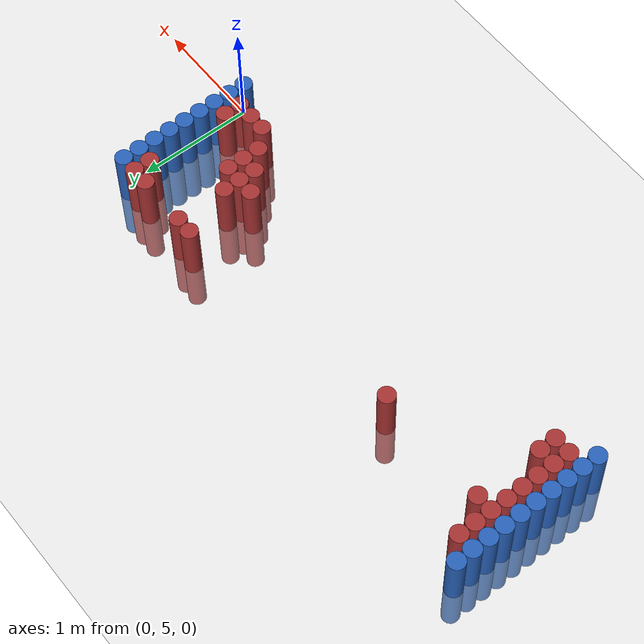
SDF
<sdf version="1.6">
 <world name="default">
  <model name="ground_plane">
   <static>1</static>
   <link name="link">
    <collision name="collision">
     <geometry><plane><normal>0 0 1</normal><size>100 100</size></plane></geometry>
     <surface><friction><ode><mu>100</mu><mu2>50</mu2></ode></friction></surface>
    </collision>
    <visual name="visual">
     <cast_shadows>0</cast_shadows>
     <geometry><plane><normal>0 0 1</normal><size>100 100</size></plane></geometry>
     <material>
      <script><uri>file://media/materials/scripts/gazebo.material</uri><name>Gazebo/Grey</name></script>
     </material>
    </visual>
   </link>
  </model>
  <model name="unit_cylinder_94">
   <static>1</static>
   <pose>-0.075000 5.025000 0.000000 0.000000 0.000000 0.000000</pose>
   <link name="link">
    <inertial>
     <mass>1</mass>
     <inertia><ixx>0.145833</ixx><ixy>0</ixy><ixz>0</ixz><iyy>0.145833</iyy><iyz>0</iyz><izz>0.125</izz></inertia>
    </inertial>
    <collision name="collision">
     <geometry><cylinder><radius>0.075000</radius><length>1</length></cylinder></geometry>
    </collision>
    <visual name="visual">
     <geometry><cylinder><radius>0.075000</radius><length>1</length></cylinder></geometry>
     <material>
      <ambient>0.152000 0.379000 0.720000 1</ambient>
      <diffuse>0.152000 0.379000 0.720000 1</diffuse>
     </material>
     <material>
      <script><name>Gazebo/Grey</name><uri>file://media/materials/scripts/gazebo.material</uri></script>
     </material>
    </visual>
   </link>
  </model>
  <model name="unit_cylinder_95">
   <static>1</static>
   <pose>-4.425000 5.025000 0.000000 0.000000 0.000000 0.000000</pose>
   <link name="link">
    <inertial>
     <mass>1</mass>
     <inertia><ixx>0.145833</ixx><ixy>0</ixy><ixz>0</ixz><iyy>0.145833</iyy><iyz>0</iyz><izz>0.125</izz></inertia>
    </inertial>
    <collision name="collision">
     <geometry><cylinder><radius>0.075000</radius><length>1</length></cylinder></geometry>
    </collision>
    <visual name="visual">
     <geometry><cylinder><radius>0.075000</radius><length>1</length></cylinder></geometry>
     <material>
      <ambient>0.152000 0.379000 0.720000 1</ambient>
      <diffuse>0.152000 0.379000 0.720000 1</diffuse>
     </material>
     <material>
      <script><name>Gazebo/Grey</name><uri>file://media/materials/scripts/gazebo.material</uri></script>
     </material>
    </visual>
   </link>
  </model>
  <model name="unit_cylinder_96">
   <static>1</static>
   <pose>-4.425000 5.175000 0.000000 0.000000 0.000000 0.000000</pose>
   <link name="link">
    <inertial>
     <mass>1</mass>
     <inertia><ixx>0.145833</ixx><ixy>0</ixy><ixz>0</ixz><iyy>0.145833</iyy><iyz>0</iyz><izz>0.125</izz></inertia>
    </inertial>
    <collision name="collision">
     <geometry><cylinder><radius>0.075000</radius><length>1</length></cylinder></geometry>
    </collision>
    <visual name="visual">
     <geometry><cylinder><radius>0.075000</radius><length>1</length></cylinder></geometry>
     <material>
      <ambient>0.152000 0.379000 0.720000 1</ambient>
      <diffuse>0.152000 0.379000 0.720000 1</diffuse>
     </material>
     <material>
      <script><name>Gazebo/Grey</name><uri>file://media/materials/scripts/gazebo.material</uri></script>
     </material>
    </visual>
   </link>
  </model>
  <model name="unit_cylinder_97">
   <static>1</static>
   <pose>-4.425000 5.325000 0.000000 0.000000 0.000000 0.000000</pose>
   <link name="link">
    <inertial>
     <mass>1</mass>
     <inertia><ixx>0.145833</ixx><ixy>0</ixy><ixz>0</ixz><iyy>0.145833</iyy><iyz>0</iyz><izz>0.125</izz></inertia>
    </inertial>
    <collision name="collision">
     <geometry><cylinder><radius>0.075000</radius><length>1</length></cylinder></geometry>
    </collision>
    <visual name="visual">
     <geometry><cylinder><radius>0.075000</radius><length>1</length></cylinder></geometry>
     <material>
      <ambient>0.152000 0.379000 0.720000 1</ambient>
      <diffuse>0.152000 0.379000 0.720000 1</diffuse>
     </material>
     <material>
      <script><name>Gazebo/Grey</name><uri>file://media/materials/scripts/gazebo.material</uri></script>
     </material>
    </visual>
   </link>
  </model>
  <model name="unit_cylinder_98">
   <static>1</static>
   <pose>-4.425000 5.475000 0.000000 0.000000 0.000000 0.000000</pose>
   <link name="link">
    <inertial>
     <mass>1</mass>
     <inertia><ixx>0.145833</ixx><ixy>0</ixy><ixz>0</ixz><iyy>0.145833</iyy><iyz>0</iyz><izz>0.125</izz></inertia>
    </inertial>
    <collision name="collision">
     <geometry><cylinder><radius>0.075000</radius><length>1</length></cylinder></geometry>
    </collision>
    <visual name="visual">
     <geometry><cylinder><radius>0.075000</radius><length>1</length></cylinder></geometry>
     <material>
      <ambient>0.152000 0.379000 0.720000 1</ambient>
      <diffuse>0.152000 0.379000 0.720000 1</diffuse>
     </material>
     <material>
      <script><name>Gazebo/Grey</name><uri>file://media/materials/scripts/gazebo.material</uri></script>
     </material>
    </visual>
   </link>
  </model>
  <model name="unit_cylinder_99">
   <static>1</static>
   <pose>-4.425000 5.625000 0.000000 0.000000 0.000000 0.000000</pose>
   <link name="link">
    <inertial>
     <mass>1</mass>
     <inertia><ixx>0.145833</ixx><ixy>0</ixy><ixz>0</ixz><iyy>0.145833</iyy><iyz>0</iyz><izz>0.125</izz></inertia>
    </inertial>
    <collision name="collision">
     <geometry><cylinder><radius>0.075000</radius><length>1</length></cylinder></geometry>
    </collision>
    <visual name="visual">
     <geometry><cylinder><radius>0.075000</radius><length>1</length></cylinder></geometry>
     <material>
      <ambient>0.152000 0.379000 0.720000 1</ambient>
      <diffuse>0.152000 0.379000 0.720000 1</diffuse>
     </material>
     <material>
      <script><name>Gazebo/Grey</name><uri>file://media/materials/scripts/gazebo.material</uri></script>
     </material>
    </visual>
   </link>
  </model>
  <model name="unit_cylinder_100">
   <static>1</static>
   <pose>-4.425000 5.775000 0.000000 0.000000 0.000000 0.000000</pose>
   <link name="link">
    <inertial>
     <mass>1</mass>
     <inertia><ixx>0.145833</ixx><ixy>0</ixy><ixz>0</ixz><iyy>0.145833</iyy><iyz>0</iyz><izz>0.125</izz></inertia>
    </inertial>
    <collision name="collision">
     <geometry><cylinder><radius>0.075000</radius><length>1</length></cylinder></geometry>
    </collision>
    <visual name="visual">
     <geometry><cylinder><radius>0.075000</radius><length>1</length></cylinder></geometry>
     <material>
      <ambient>0.152000 0.379000 0.720000 1</ambient>
      <diffuse>0.152000 0.379000 0.720000 1</diffuse>
     </material>
     <material>
      <script><name>Gazebo/Grey</name><uri>file://media/materials/scripts/gazebo.material</uri></script>
     </material>
    </visual>
   </link>
  </model>
  <model name="unit_cylinder_101">
   <static>1</static>
   <pose>-4.425000 5.925000 0.000000 0.000000 0.000000 0.000000</pose>
   <link name="link">
    <inertial>
     <mass>1</mass>
     <inertia><ixx>0.145833</ixx><ixy>0</ixy><ixz>0</ixz><iyy>0.145833</iyy><iyz>0</iyz><izz>0.125</izz></inertia>
    </inertial>
    <collision name="collision">
     <geometry><cylinder><radius>0.075000</radius><length>1</length></cylinder></geometry>
    </collision>
    <visual name="visual">
     <geometry><cylinder><radius>0.075000</radius><length>1</length></cylinder></geometry>
     <material>
      <ambient>0.152000 0.379000 0.720000 1</ambient>
      <diffuse>0.152000 0.379000 0.720000 1</diffuse>
     </material>
     <material>
      <script><name>Gazebo/Grey</name><uri>file://media/materials/scripts/gazebo.material</uri></script>
     </material>
    </visual>
   </link>
  </model>
  <model name="unit_cylinder_102">
   <static>1</static>
   <pose>-4.425000 6.075000 0.000000 0.000000 0.000000 0.000000</pose>
   <link name="link">
    <inertial>
     <mass>1</mass>
     <inertia><ixx>0.145833</ixx><ixy>0</ixy><ixz>0</ixz><iyy>0.145833</iyy><iyz>0</iyz><izz>0.125</izz></inertia>
    </inertial>
    <collision name="collision">
     <geometry><cylinder><radius>0.075000</radius><length>1</length></cylinder></geometry>
    </collision>
    <visual name="visual">
     <geometry><cylinder><radius>0.075000</radius><length>1</length></cylinder></geometry>
     <material>
      <ambient>0.152000 0.379000 0.720000 1</ambient>
      <diffuse>0.152000 0.379000 0.720000 1</diffuse>
     </material>
     <material>
      <script><name>Gazebo/Grey</name><uri>file://media/materials/scripts/gazebo.material</uri></script>
     </material>
    </visual>
   </link>
  </model>
  <model name="unit_cylinder_103">
   <static>1</static>
   <pose>-4.425000 6.225000 0.000000 0.000000 0.000000 0.000000</pose>
   <link name="link">
    <inertial>
     <mass>1</mass>
     <inertia><ixx>0.145833</ixx><ixy>0</ixy><ixz>0</ixz><iyy>0.145833</iyy><iyz>0</iyz><izz>0.125</izz></inertia>
    </inertial>
    <collision name="collision">
     <geometry><cylinder><radius>0.075000</radius><length>1</length></cylinder></geometry>
    </collision>
    <visual name="visual">
     <geometry><cylinder><radius>0.075000</radius><length>1</length></cylinder></geometry>
     <material>
      <ambient>0.152000 0.379000 0.720000 1</ambient>
      <diffuse>0.152000 0.379000 0.720000 1</diffuse>
     </material>
     <material>
      <script><name>Gazebo/Grey</name><uri>file://media/materials/scripts/gazebo.material</uri></script>
     </material>
    </visual>
   </link>
  </model>
  <model name="unit_cylinder_104">
   <static>1</static>
   <pose>-4.425000 6.375000 0.000000 0.000000 0.000000 0.000000</pose>
   <link name="link">
    <inertial>
     <mass>1</mass>
     <inertia><ixx>0.145833</ixx><ixy>0</ixy><ixz>0</ixz><iyy>0.145833</iyy><iyz>0</iyz><izz>0.125</izz></inertia>
    </inertial>
    <collision name="collision">
     <geometry><cylinder><radius>0.075000</radius><length>1</length></cylinder></geometry>
    </collision>
    <visual name="visual">
     <geometry><cylinder><radius>0.075000</radius><length>1</length></cylinder></geometry>
     <material>
      <ambient>0.152000 0.379000 0.720000 1</ambient>
      <diffuse>0.152000 0.379000 0.720000 1</diffuse>
     </material>
     <material>
      <script><name>Gazebo/Grey</name><uri>file://media/materials/scripts/gazebo.material</uri></script>
     </material>
    </visual>
   </link>
  </model>
  <model name="unit_cylinder_126">
   <static>1</static>
   <pose>-4.275000 5.175000 0.000000 0.000000 0.000000 0.000000</pose>
   <link name="link">
    <inertial>
     <mass>1</mass>
     <inertia><ixx>0.145833</ixx><ixy>0</ixy><ixz>0</ixz><iyy>0.145833</iyy><iyz>0</iyz><izz>0.125</izz></inertia>
    </inertial>
    <collision name="collision">
     <geometry><cylinder><radius>0.075000</radius><length>1</length></cylinder></geometry>
    </collision>
    <visual name="visual">
     <geometry><cylinder><radius>0.075000</radius><length>1</length></cylinder></geometry>
     <material>
      <ambient>0.648000 0.192000 0.192000 1</ambient>
      <diffuse>0.648000 0.192000 0.192000 1</diffuse>
     </material>
     <material>
      <script><name>Gazebo/Grey</name><uri>file://media/materials/scripts/gazebo.material</uri></script>
     </material>
    </visual>
   </link>
  </model>
  <model name="unit_cylinder_127">
   <static>1</static>
   <pose>-4.275000 5.325000 0.000000 0.000000 0.000000 0.000000</pose>
   <link name="link">
    <inertial>
     <mass>1</mass>
     <inertia><ixx>0.145833</ixx><ixy>0</ixy><ixz>0</ixz><iyy>0.145833</iyy><iyz>0</iyz><izz>0.125</izz></inertia>
    </inertial>
    <collision name="collision">
     <geometry><cylinder><radius>0.075000</radius><length>1</length></cylinder></geometry>
    </collision>
    <visual name="visual">
     <geometry><cylinder><radius>0.075000</radius><length>1</length></cylinder></geometry>
     <material>
      <ambient>0.648000 0.192000 0.192000 1</ambient>
      <diffuse>0.648000 0.192000 0.192000 1</diffuse>
     </material>
     <material>
      <script><name>Gazebo/Grey</name><uri>file://media/materials/scripts/gazebo.material</uri></script>
     </material>
    </visual>
   </link>
  </model>
  <model name="unit_cylinder_128">
   <static>1</static>
   <pose>-4.275000 5.475000 0.000000 0.000000 0.000000 0.000000</pose>
   <link name="link">
    <inertial>
     <mass>1</mass>
     <inertia><ixx>0.145833</ixx><ixy>0</ixy><ixz>0</ixz><iyy>0.145833</iyy><iyz>0</iyz><izz>0.125</izz></inertia>
    </inertial>
    <collision name="collision">
     <geometry><cylinder><radius>0.075000</radius><length>1</length></cylinder></geometry>
    </collision>
    <visual name="visual">
     <geometry><cylinder><radius>0.075000</radius><length>1</length></cylinder></geometry>
     <material>
      <ambient>0.648000 0.192000 0.192000 1</ambient>
      <diffuse>0.648000 0.192000 0.192000 1</diffuse>
     </material>
     <material>
      <script><name>Gazebo/Grey</name><uri>file://media/materials/scripts/gazebo.material</uri></script>
     </material>
    </visual>
   </link>
  </model>
  <model name="unit_cylinder_129">
   <static>1</static>
   <pose>-4.275000 5.625000 0.000000 0.000000 0.000000 0.000000</pose>
   <link name="link">
    <inertial>
     <mass>1</mass>
     <inertia><ixx>0.145833</ixx><ixy>0</ixy><ixz>0</ixz><iyy>0.145833</iyy><iyz>0</iyz><izz>0.125</izz></inertia>
    </inertial>
    <collision name="collision">
     <geometry><cylinder><radius>0.075000</radius><length>1</length></cylinder></geometry>
    </collision>
    <visual name="visual">
     <geometry><cylinder><radius>0.075000</radius><length>1</length></cylinder></geometry>
     <material>
      <ambient>0.648000 0.192000 0.192000 1</ambient>
      <diffuse>0.648000 0.192000 0.192000 1</diffuse>
     </material>
     <material>
      <script><name>Gazebo/Grey</name><uri>file://media/materials/scripts/gazebo.material</uri></script>
     </material>
    </visual>
   </link>
  </model>
  <model name="unit_cylinder_130">
   <static>1</static>
   <pose>-4.275000 5.775000 0.000000 0.000000 0.000000 0.000000</pose>
   <link name="link">
    <inertial>
     <mass>1</mass>
     <inertia><ixx>0.145833</ixx><ixy>0</ixy><ixz>0</ixz><iyy>0.145833</iyy><iyz>0</iyz><izz>0.125</izz></inertia>
    </inertial>
    <collision name="collision">
     <geometry><cylinder><radius>0.075000</radius><length>1</length></cylinder></geometry>
    </collision>
    <visual name="visual">
     <geometry><cylinder><radius>0.075000</radius><length>1</length></cylinder></geometry>
     <material>
      <ambient>0.648000 0.192000 0.192000 1</ambient>
      <diffuse>0.648000 0.192000 0.192000 1</diffuse>
     </material>
     <material>
      <script><name>Gazebo/Grey</name><uri>file://media/materials/scripts/gazebo.material</uri></script>
     </material>
    </visual>
   </link>
  </model>
  <model name="unit_cylinder_131">
   <static>1</static>
   <pose>-4.275000 5.925000 0.000000 0.000000 0.000000 0.000000</pose>
   <link name="link">
    <inertial>
     <mass>1</mass>
     <inertia><ixx>0.145833</ixx><ixy>0</ixy><ixz>0</ixz><iyy>0.145833</iyy><iyz>0</iyz><izz>0.125</izz></inertia>
    </inertial>
    <collision name="collision">
     <geometry><cylinder><radius>0.075000</radius><length>1</length></cylinder></geometry>
    </collision>
    <visual name="visual">
     <geometry><cylinder><radius>0.075000</radius><length>1</length></cylinder></geometry>
     <material>
      <ambient>0.648000 0.192000 0.192000 1</ambient>
      <diffuse>0.648000 0.192000 0.192000 1</diffuse>
     </material>
     <material>
      <script><name>Gazebo/Grey</name><uri>file://media/materials/scripts/gazebo.material</uri></script>
     </material>
    </visual>
   </link>
  </model>
  <model name="unit_cylinder_132">
   <static>1</static>
   <pose>-4.275000 6.075000 0.000000 0.000000 0.000000 0.000000</pose>
   <link name="link">
    <inertial>
     <mass>1</mass>
     <inertia><ixx>0.145833</ixx><ixy>0</ixy><ixz>0</ixz><iyy>0.145833</iyy><iyz>0</iyz><izz>0.125</izz></inertia>
    </inertial>
    <collision name="collision">
     <geometry><cylinder><radius>0.075000</radius><length>1</length></cylinder></geometry>
    </collision>
    <visual name="visual">
     <geometry><cylinder><radius>0.075000</radius><length>1</length></cylinder></geometry>
     <material>
      <ambient>0.648000 0.192000 0.192000 1</ambient>
      <diffuse>0.648000 0.192000 0.192000 1</diffuse>
     </material>
     <material>
      <script><name>Gazebo/Grey</name><uri>file://media/materials/scripts/gazebo.material</uri></script>
     </material>
    </visual>
   </link>
  </model>
  <model name="unit_cylinder_133">
   <static>1</static>
   <pose>-4.275000 6.225000 0.000000 0.000000 0.000000 0.000000</pose>
   <link name="link">
    <inertial>
     <mass>1</mass>
     <inertia><ixx>0.145833</ixx><ixy>0</ixy><ixz>0</ixz><iyy>0.145833</iyy><iyz>0</iyz><izz>0.125</izz></inertia>
    </inertial>
    <collision name="collision">
     <geometry><cylinder><radius>0.075000</radius><length>1</length></cylinder></geometry>
    </collision>
    <visual name="visual">
     <geometry><cylinder><radius>0.075000</radius><length>1</length></cylinder></geometry>
     <material>
      <ambient>0.648000 0.192000 0.192000 1</ambient>
      <diffuse>0.648000 0.192000 0.192000 1</diffuse>
     </material>
     <material>
      <script><name>Gazebo/Grey</name><uri>file://media/materials/scripts/gazebo.material</uri></script>
     </material>
    </visual>
   </link>
  </model>
  <model name="unit_cylinder_149">
   <static>1</static>
   <pose>-4.125000 5.175000 0.000000 0.000000 0.000000 0.000000</pose>
   <link name="link">
    <inertial>
     <mass>1</mass>
     <inertia><ixx>0.145833</ixx><ixy>0</ixy><ixz>0</ixz><iyy>0.145833</iyy><iyz>0</iyz><izz>0.125</izz></inertia>
    </inertial>
    <collision name="collision">
     <geometry><cylinder><radius>0.075000</radius><length>1</length></cylinder></geometry>
    </collision>
    <visual name="visual">
     <geometry><cylinder><radius>0.075000</radius><length>1</length></cylinder></geometry>
     <material>
      <ambient>0.648000 0.192000 0.192000 1</ambient>
      <diffuse>0.648000 0.192000 0.192000 1</diffuse>
     </material>
     <material>
      <script><name>Gazebo/Grey</name><uri>file://media/materials/scripts/gazebo.material</uri></script>
     </material>
    </visual>
   </link>
  </model>
  <model name="unit_cylinder_150">
   <static>1</static>
   <pose>-4.125000 5.325000 0.000000 0.000000 0.000000 0.000000</pose>
   <link name="link">
    <inertial>
     <mass>1</mass>
     <inertia><ixx>0.145833</ixx><ixy>0</ixy><ixz>0</ixz><iyy>0.145833</iyy><iyz>0</iyz><izz>0.125</izz></inertia>
    </inertial>
    <collision name="collision">
     <geometry><cylinder><radius>0.075000</radius><length>1</length></cylinder></geometry>
    </collision>
    <visual name="visual">
     <geometry><cylinder><radius>0.075000</radius><length>1</length></cylinder></geometry>
     <material>
      <ambient>0.648000 0.192000 0.192000 1</ambient>
      <diffuse>0.648000 0.192000 0.192000 1</diffuse>
     </material>
     <material>
      <script><name>Gazebo/Grey</name><uri>file://media/materials/scripts/gazebo.material</uri></script>
     </material>
    </visual>
   </link>
  </model>
  <model name="unit_cylinder_151">
   <static>1</static>
   <pose>-4.125000 5.925000 0.000000 0.000000 0.000000 0.000000</pose>
   <link name="link">
    <inertial>
     <mass>1</mass>
     <inertia><ixx>0.145833</ixx><ixy>0</ixy><ixz>0</ixz><iyy>0.145833</iyy><iyz>0</iyz><izz>0.125</izz></inertia>
    </inertial>
    <collision name="collision">
     <geometry><cylinder><radius>0.075000</radius><length>1</length></cylinder></geometry>
    </collision>
    <visual name="visual">
     <geometry><cylinder><radius>0.075000</radius><length>1</length></cylinder></geometry>
     <material>
      <ambient>0.648000 0.192000 0.192000 1</ambient>
      <diffuse>0.648000 0.192000 0.192000 1</diffuse>
     </material>
     <material>
      <script><name>Gazebo/Grey</name><uri>file://media/materials/scripts/gazebo.material</uri></script>
     </material>
    </visual>
   </link>
  </model>
  <model name="unit_cylinder_176">
   <static>1</static>
   <pose>-3.075000 5.925000 0.000000 0.000000 0.000000 0.000000</pose>
   <link name="link">
    <inertial>
     <mass>1</mass>
     <inertia><ixx>0.145833</ixx><ixy>0</ixy><ixz>0</ixz><iyy>0.145833</iyy><iyz>0</iyz><izz>0.125</izz></inertia>
    </inertial>
    <collision name="collision">
     <geometry><cylinder><radius>0.075000</radius><length>1</length></cylinder></geometry>
    </collision>
    <visual name="visual">
     <geometry><cylinder><radius>0.075000</radius><length>1</length></cylinder></geometry>
     <material>
      <ambient>0.648000 0.192000 0.192000 1</ambient>
      <diffuse>0.648000 0.192000 0.192000 1</diffuse>
     </material>
     <material>
      <script><name>Gazebo/Grey</name><uri>file://media/materials/scripts/gazebo.material</uri></script>
     </material>
    </visual>
   </link>
  </model>
  <model name="unit_cylinder_202">
   <static>1</static>
   <pose>-0.975000 5.625000 0.000000 0.000000 0.000000 0.000000</pose>
   <link name="link">
    <inertial>
     <mass>1</mass>
     <inertia><ixx>0.145833</ixx><ixy>0</ixy><ixz>0</ixz><iyy>0.145833</iyy><iyz>0</iyz><izz>0.125</izz></inertia>
    </inertial>
    <collision name="collision">
     <geometry><cylinder><radius>0.075000</radius><length>1</length></cylinder></geometry>
    </collision>
    <visual name="visual">
     <geometry><cylinder><radius>0.075000</radius><length>1</length></cylinder></geometry>
     <material>
      <ambient>0.648000 0.192000 0.192000 1</ambient>
      <diffuse>0.648000 0.192000 0.192000 1</diffuse>
     </material>
     <material>
      <script><name>Gazebo/Grey</name><uri>file://media/materials/scripts/gazebo.material</uri></script>
     </material>
    </visual>
   </link>
  </model>
  <model name="unit_cylinder_203">
   <static>1</static>
   <pose>-0.975000 6.225000 0.000000 0.000000 0.000000 0.000000</pose>
   <link name="link">
    <inertial>
     <mass>1</mass>
     <inertia><ixx>0.145833</ixx><ixy>0</ixy><ixz>0</ixz><iyy>0.145833</iyy><iyz>0</iyz><izz>0.125</izz></inertia>
    </inertial>
    <collision name="collision">
     <geometry><cylinder><radius>0.075000</radius><length>1</length></cylinder></geometry>
    </collision>
    <visual name="visual">
     <geometry><cylinder><radius>0.075000</radius><length>1</length></cylinder></geometry>
     <material>
      <ambient>0.648000 0.192000 0.192000 1</ambient>
      <diffuse>0.648000 0.192000 0.192000 1</diffuse>
     </material>
     <material>
      <script><name>Gazebo/Grey</name><uri>file://media/materials/scripts/gazebo.material</uri></script>
     </material>
    </visual>
   </link>
  </model>
  <model name="unit_cylinder_205">
   <static>1</static>
   <pose>-0.825000 5.475000 0.000000 0.000000 0.000000 0.000000</pose>
   <link name="link">
    <inertial>
     <mass>1</mass>
     <inertia><ixx>0.145833</ixx><ixy>0</ixy><ixz>0</ixz><iyy>0.145833</iyy><iyz>0</iyz><izz>0.125</izz></inertia>
    </inertial>
    <collision name="collision">
     <geometry><cylinder><radius>0.075000</radius><length>1</length></cylinder></geometry>
    </collision>
    <visual name="visual">
     <geometry><cylinder><radius>0.075000</radius><length>1</length></cylinder></geometry>
     <material>
      <ambient>0.648000 0.192000 0.192000 1</ambient>
      <diffuse>0.648000 0.192000 0.192000 1</diffuse>
     </material>
     <material>
      <script><name>Gazebo/Grey</name><uri>file://media/materials/scripts/gazebo.material</uri></script>
     </material>
    </visual>
   </link>
  </model>
  <model name="unit_cylinder_206">
   <static>1</static>
   <pose>-0.825000 5.625000 0.000000 0.000000 0.000000 0.000000</pose>
   <link name="link">
    <inertial>
     <mass>1</mass>
     <inertia><ixx>0.145833</ixx><ixy>0</ixy><ixz>0</ixz><iyy>0.145833</iyy><iyz>0</iyz><izz>0.125</izz></inertia>
    </inertial>
    <collision name="collision">
     <geometry><cylinder><radius>0.075000</radius><length>1</length></cylinder></geometry>
    </collision>
    <visual name="visual">
     <geometry><cylinder><radius>0.075000</radius><length>1</length></cylinder></geometry>
     <material>
      <ambient>0.648000 0.192000 0.192000 1</ambient>
      <diffuse>0.648000 0.192000 0.192000 1</diffuse>
     </material>
     <material>
      <script><name>Gazebo/Grey</name><uri>file://media/materials/scripts/gazebo.material</uri></script>
     </material>
    </visual>
   </link>
  </model>
  <model name="unit_cylinder_207">
   <static>1</static>
   <pose>-0.825000 5.775000 0.000000 0.000000 0.000000 0.000000</pose>
   <link name="link">
    <inertial>
     <mass>1</mass>
     <inertia><ixx>0.145833</ixx><ixy>0</ixy><ixz>0</ixz><iyy>0.145833</iyy><iyz>0</iyz><izz>0.125</izz></inertia>
    </inertial>
    <collision name="collision">
     <geometry><cylinder><radius>0.075000</radius><length>1</length></cylinder></geometry>
    </collision>
    <visual name="visual">
     <geometry><cylinder><radius>0.075000</radius><length>1</length></cylinder></geometry>
     <material>
      <ambient>0.648000 0.192000 0.192000 1</ambient>
      <diffuse>0.648000 0.192000 0.192000 1</diffuse>
     </material>
     <material>
      <script><name>Gazebo/Grey</name><uri>file://media/materials/scripts/gazebo.material</uri></script>
     </material>
    </visual>
   </link>
  </model>
  <model name="unit_cylinder_208">
   <static>1</static>
   <pose>-0.825000 6.225000 0.000000 0.000000 0.000000 0.000000</pose>
   <link name="link">
    <inertial>
     <mass>1</mass>
     <inertia><ixx>0.145833</ixx><ixy>0</ixy><ixz>0</ixz><iyy>0.145833</iyy><iyz>0</iyz><izz>0.125</izz></inertia>
    </inertial>
    <collision name="collision">
     <geometry><cylinder><radius>0.075000</radius><length>1</length></cylinder></geometry>
    </collision>
    <visual name="visual">
     <geometry><cylinder><radius>0.075000</radius><length>1</length></cylinder></geometry>
     <material>
      <ambient>0.648000 0.192000 0.192000 1</ambient>
      <diffuse>0.648000 0.192000 0.192000 1</diffuse>
     </material>
     <material>
      <script><name>Gazebo/Grey</name><uri>file://media/materials/scripts/gazebo.material</uri></script>
     </material>
    </visual>
   </link>
  </model>
  <model name="unit_cylinder_210">
   <static>1</static>
   <pose>-0.675000 5.325000 0.000000 0.000000 0.000000 0.000000</pose>
   <link name="link">
    <inertial>
     <mass>1</mass>
     <inertia><ixx>0.145833</ixx><ixy>0</ixy><ixz>0</ixz><iyy>0.145833</iyy><iyz>0</iyz><izz>0.125</izz></inertia>
    </inertial>
    <collision name="collision">
     <geometry><cylinder><radius>0.075000</radius><length>1</length></cylinder></geometry>
    </collision>
    <visual name="visual">
     <geometry><cylinder><radius>0.075000</radius><length>1</length></cylinder></geometry>
     <material>
      <ambient>0.648000 0.192000 0.192000 1</ambient>
      <diffuse>0.648000 0.192000 0.192000 1</diffuse>
     </material>
     <material>
      <script><name>Gazebo/Grey</name><uri>file://media/materials/scripts/gazebo.material</uri></script>
     </material>
    </visual>
   </link>
  </model>
  <model name="unit_cylinder_211">
   <static>1</static>
   <pose>-0.675000 5.475000 0.000000 0.000000 0.000000 0.000000</pose>
   <link name="link">
    <inertial>
     <mass>1</mass>
     <inertia><ixx>0.145833</ixx><ixy>0</ixy><ixz>0</ixz><iyy>0.145833</iyy><iyz>0</iyz><izz>0.125</izz></inertia>
    </inertial>
    <collision name="collision">
     <geometry><cylinder><radius>0.075000</radius><length>1</length></cylinder></geometry>
    </collision>
    <visual name="visual">
     <geometry><cylinder><radius>0.075000</radius><length>1</length></cylinder></geometry>
     <material>
      <ambient>0.648000 0.192000 0.192000 1</ambient>
      <diffuse>0.648000 0.192000 0.192000 1</diffuse>
     </material>
     <material>
      <script><name>Gazebo/Grey</name><uri>file://media/materials/scripts/gazebo.material</uri></script>
     </material>
    </visual>
   </link>
  </model>
  <model name="unit_cylinder_212">
   <static>1</static>
   <pose>-0.675000 5.625000 0.000000 0.000000 0.000000 0.000000</pose>
   <link name="link">
    <inertial>
     <mass>1</mass>
     <inertia><ixx>0.145833</ixx><ixy>0</ixy><ixz>0</ixz><iyy>0.145833</iyy><iyz>0</iyz><izz>0.125</izz></inertia>
    </inertial>
    <collision name="collision">
     <geometry><cylinder><radius>0.075000</radius><length>1</length></cylinder></geometry>
    </collision>
    <visual name="visual">
     <geometry><cylinder><radius>0.075000</radius><length>1</length></cylinder></geometry>
     <material>
      <ambient>0.648000 0.192000 0.192000 1</ambient>
      <diffuse>0.648000 0.192000 0.192000 1</diffuse>
     </material>
     <material>
      <script><name>Gazebo/Grey</name><uri>file://media/materials/scripts/gazebo.material</uri></script>
     </material>
    </visual>
   </link>
  </model>
  <model name="unit_cylinder_216">
   <static>1</static>
   <pose>-0.525000 5.175000 0.000000 0.000000 0.000000 0.000000</pose>
   <link name="link">
    <inertial>
     <mass>1</mass>
     <inertia><ixx>0.145833</ixx><ixy>0</ixy><ixz>0</ixz><iyy>0.145833</iyy><iyz>0</iyz><izz>0.125</izz></inertia>
    </inertial>
    <collision name="collision">
     <geometry><cylinder><radius>0.075000</radius><length>1</length></cylinder></geometry>
    </collision>
    <visual name="visual">
     <geometry><cylinder><radius>0.075000</radius><length>1</length></cylinder></geometry>
     <material>
      <ambient>0.648000 0.192000 0.192000 1</ambient>
      <diffuse>0.648000 0.192000 0.192000 1</diffuse>
     </material>
     <material>
      <script><name>Gazebo/Grey</name><uri>file://media/materials/scripts/gazebo.material</uri></script>
     </material>
    </visual>
   </link>
  </model>
  <model name="unit_cylinder_223">
   <static>1</static>
   <pose>-0.375000 5.175000 0.000000 0.000000 0.000000 0.000000</pose>
   <link name="link">
    <inertial>
     <mass>1</mass>
     <inertia><ixx>0.145833</ixx><ixy>0</ixy><ixz>0</ixz><iyy>0.145833</iyy><iyz>0</iyz><izz>0.125</izz></inertia>
    </inertial>
    <collision name="collision">
     <geometry><cylinder><radius>0.075000</radius><length>1</length></cylinder></geometry>
    </collision>
    <visual name="visual">
     <geometry><cylinder><radius>0.075000</radius><length>1</length></cylinder></geometry>
     <material>
      <ambient>0.648000 0.192000 0.192000 1</ambient>
      <diffuse>0.648000 0.192000 0.192000 1</diffuse>
     </material>
     <material>
      <script><name>Gazebo/Grey</name><uri>file://media/materials/scripts/gazebo.material</uri></script>
     </material>
    </visual>
   </link>
  </model>
  <model name="unit_cylinder_224">
   <static>1</static>
   <pose>-0.375000 6.225000 0.000000 0.000000 0.000000 0.000000</pose>
   <link name="link">
    <inertial>
     <mass>1</mass>
     <inertia><ixx>0.145833</ixx><ixy>0</ixy><ixz>0</ixz><iyy>0.145833</iyy><iyz>0</iyz><izz>0.125</izz></inertia>
    </inertial>
    <collision name="collision">
     <geometry><cylinder><radius>0.075000</radius><length>1</length></cylinder></geometry>
    </collision>
    <visual name="visual">
     <geometry><cylinder><radius>0.075000</radius><length>1</length></cylinder></geometry>
     <material>
      <ambient>0.648000 0.192000 0.192000 1</ambient>
      <diffuse>0.648000 0.192000 0.192000 1</diffuse>
     </material>
     <material>
      <script><name>Gazebo/Grey</name><uri>file://media/materials/scripts/gazebo.material</uri></script>
     </material>
    </visual>
   </link>
  </model>
  <model name="unit_cylinder_233">
   <static>1</static>
   <pose>-0.225000 5.175000 0.000000 0.000000 0.000000 0.000000</pose>
   <link name="link">
    <inertial>
     <mass>1</mass>
     <inertia><ixx>0.145833</ixx><ixy>0</ixy><ixz>0</ixz><iyy>0.145833</iyy><iyz>0</iyz><izz>0.125</izz></inertia>
    </inertial>
    <collision name="collision">
     <geometry><cylinder><radius>0.075000</radius><length>1</length></cylinder></geometry>
    </collision>
    <visual name="visual">
     <geometry><cylinder><radius>0.075000</radius><length>1</length></cylinder></geometry>
     <material>
      <ambient>0.648000 0.192000 0.192000 1</ambient>
      <diffuse>0.648000 0.192000 0.192000 1</diffuse>
     </material>
     <material>
      <script><name>Gazebo/Grey</name><uri>file://media/materials/scripts/gazebo.material</uri></script>
     </material>
    </visual>
   </link>
  </model>
  <model name="unit_cylinder_234">
   <static>1</static>
   <pose>-0.225000 5.325000 0.000000 0.000000 0.000000 0.000000</pose>
   <link name="link">
    <inertial>
     <mass>1</mass>
     <inertia><ixx>0.145833</ixx><ixy>0</ixy><ixz>0</ixz><iyy>0.145833</iyy><iyz>0</iyz><izz>0.125</izz></inertia>
    </inertial>
    <collision name="collision">
     <geometry><cylinder><radius>0.075000</radius><length>1</length></cylinder></geometry>
    </collision>
    <visual name="visual">
     <geometry><cylinder><radius>0.075000</radius><length>1</length></cylinder></geometry>
     <material>
      <ambient>0.648000 0.192000 0.192000 1</ambient>
      <diffuse>0.648000 0.192000 0.192000 1</diffuse>
     </material>
     <material>
      <script><name>Gazebo/Grey</name><uri>file://media/materials/scripts/gazebo.material</uri></script>
     </material>
    </visual>
   </link>
  </model>
  <model name="unit_cylinder_235">
   <static>1</static>
   <pose>-0.225000 6.075000 0.000000 0.000000 0.000000 0.000000</pose>
   <link name="link">
    <inertial>
     <mass>1</mass>
     <inertia><ixx>0.145833</ixx><ixy>0</ixy><ixz>0</ixz><iyy>0.145833</iyy><iyz>0</iyz><izz>0.125</izz></inertia>
    </inertial>
    <collision name="collision">
     <geometry><cylinder><radius>0.075000</radius><length>1</length></cylinder></geometry>
    </collision>
    <visual name="visual">
     <geometry><cylinder><radius>0.075000</radius><length>1</length></cylinder></geometry>
     <material>
      <ambient>0.648000 0.192000 0.192000 1</ambient>
      <diffuse>0.648000 0.192000 0.192000 1</diffuse>
     </material>
     <material>
      <script><name>Gazebo/Grey</name><uri>file://media/materials/scripts/gazebo.material</uri></script>
     </material>
    </visual>
   </link>
  </model>
  <model name="unit_cylinder_236">
   <static>1</static>
   <pose>-0.225000 6.225000 0.000000 0.000000 0.000000 0.000000</pose>
   <link name="link">
    <inertial>
     <mass>1</mass>
     <inertia><ixx>0.145833</ixx><ixy>0</ixy><ixz>0</ixz><iyy>0.145833</iyy><iyz>0</iyz><izz>0.125</izz></inertia>
    </inertial>
    <collision name="collision">
     <geometry><cylinder><radius>0.075000</radius><length>1</length></cylinder></geometry>
    </collision>
    <visual name="visual">
     <geometry><cylinder><radius>0.075000</radius><length>1</length></cylinder></geometry>
     <material>
      <ambient>0.648000 0.192000 0.192000 1</ambient>
      <diffuse>0.648000 0.192000 0.192000 1</diffuse>
     </material>
     <material>
      <script><name>Gazebo/Grey</name><uri>file://media/materials/scripts/gazebo.material</uri></script>
     </material>
    </visual>
   </link>
  </model>
  <model name="unit_cylinder_251">
   <static>1</static>
   <pose>-0.075000 5.175000 0.000000 0.000000 0.000000 0.000000</pose>
   <link name="link">
    <inertial>
     <mass>1</mass>
     <inertia><ixx>0.145833</ixx><ixy>0</ixy><ixz>0</ixz><iyy>0.145833</iyy><iyz>0</iyz><izz>0.125</izz></inertia>
    </inertial>
    <collision name="collision">
     <geometry><cylinder><radius>0.075000</radius><length>1</length></cylinder></geometry>
    </collision>
    <visual name="visual">
     <geometry><cylinder><radius>0.075000</radius><length>1</length></cylinder></geometry>
     <material>
      <ambient>0.152000 0.379000 0.720000 1</ambient>
      <diffuse>0.152000 0.379000 0.720000 1</diffuse>
     </material>
     <material>
      <script><name>Gazebo/Grey</name><uri>file://media/materials/scripts/gazebo.material</uri></script>
     </material>
    </visual>
   </link>
  </model>
  <model name="unit_cylinder_252">
   <static>1</static>
   <pose>-0.075000 5.325000 0.000000 0.000000 0.000000 0.000000</pose>
   <link name="link">
    <inertial>
     <mass>1</mass>
     <inertia><ixx>0.145833</ixx><ixy>0</ixy><ixz>0</ixz><iyy>0.145833</iyy><iyz>0</iyz><izz>0.125</izz></inertia>
    </inertial>
    <collision name="collision">
     <geometry><cylinder><radius>0.075000</radius><length>1</length></cylinder></geometry>
    </collision>
    <visual name="visual">
     <geometry><cylinder><radius>0.075000</radius><length>1</length></cylinder></geometry>
     <material>
      <ambient>0.152000 0.379000 0.720000 1</ambient>
      <diffuse>0.152000 0.379000 0.720000 1</diffuse>
     </material>
     <material>
      <script><name>Gazebo/Grey</name><uri>file://media/materials/scripts/gazebo.material</uri></script>
     </material>
    </visual>
   </link>
  </model>
  <model name="unit_cylinder_253">
   <static>1</static>
   <pose>-0.075000 5.475000 0.000000 0.000000 0.000000 0.000000</pose>
   <link name="link">
    <inertial>
     <mass>1</mass>
     <inertia><ixx>0.145833</ixx><ixy>0</ixy><ixz>0</ixz><iyy>0.145833</iyy><iyz>0</iyz><izz>0.125</izz></inertia>
    </inertial>
    <collision name="collision">
     <geometry><cylinder><radius>0.075000</radius><length>1</length></cylinder></geometry>
    </collision>
    <visual name="visual">
     <geometry><cylinder><radius>0.075000</radius><length>1</length></cylinder></geometry>
     <material>
      <ambient>0.152000 0.379000 0.720000 1</ambient>
      <diffuse>0.152000 0.379000 0.720000 1</diffuse>
     </material>
     <material>
      <script><name>Gazebo/Grey</name><uri>file://media/materials/scripts/gazebo.material</uri></script>
     </material>
    </visual>
   </link>
  </model>
  <model name="unit_cylinder_254">
   <static>1</static>
   <pose>-0.075000 5.625000 0.000000 0.000000 0.000000 0.000000</pose>
   <link name="link">
    <inertial>
     <mass>1</mass>
     <inertia><ixx>0.145833</ixx><ixy>0</ixy><ixz>0</ixz><iyy>0.145833</iyy><iyz>0</iyz><izz>0.125</izz></inertia>
    </inertial>
    <collision name="collision">
     <geometry><cylinder><radius>0.075000</radius><length>1</length></cylinder></geometry>
    </collision>
    <visual name="visual">
     <geometry><cylinder><radius>0.075000</radius><length>1</length></cylinder></geometry>
     <material>
      <ambient>0.152000 0.379000 0.720000 1</ambient>
      <diffuse>0.152000 0.379000 0.720000 1</diffuse>
     </material>
     <material>
      <script><name>Gazebo/Grey</name><uri>file://media/materials/scripts/gazebo.material</uri></script>
     </material>
    </visual>
   </link>
  </model>
  <model name="unit_cylinder_255">
   <static>1</static>
   <pose>-0.075000 5.775000 0.000000 0.000000 0.000000 0.000000</pose>
   <link name="link">
    <inertial>
     <mass>1</mass>
     <inertia><ixx>0.145833</ixx><ixy>0</ixy><ixz>0</ixz><iyy>0.145833</iyy><iyz>0</iyz><izz>0.125</izz></inertia>
    </inertial>
    <collision name="collision">
     <geometry><cylinder><radius>0.075000</radius><length>1</length></cylinder></geometry>
    </collision>
    <visual name="visual">
     <geometry><cylinder><radius>0.075000</radius><length>1</length></cylinder></geometry>
     <material>
      <ambient>0.152000 0.379000 0.720000 1</ambient>
      <diffuse>0.152000 0.379000 0.720000 1</diffuse>
     </material>
     <material>
      <script><name>Gazebo/Grey</name><uri>file://media/materials/scripts/gazebo.material</uri></script>
     </material>
    </visual>
   </link>
  </model>
  <model name="unit_cylinder_256">
   <static>1</static>
   <pose>-0.075000 5.925000 0.000000 0.000000 0.000000 0.000000</pose>
   <link name="link">
    <inertial>
     <mass>1</mass>
     <inertia><ixx>0.145833</ixx><ixy>0</ixy><ixz>0</ixz><iyy>0.145833</iyy><iyz>0</iyz><izz>0.125</izz></inertia>
    </inertial>
    <collision name="collision">
     <geometry><cylinder><radius>0.075000</radius><length>1</length></cylinder></geometry>
    </collision>
    <visual name="visual">
     <geometry><cylinder><radius>0.075000</radius><length>1</length></cylinder></geometry>
     <material>
      <ambient>0.152000 0.379000 0.720000 1</ambient>
      <diffuse>0.152000 0.379000 0.720000 1</diffuse>
     </material>
     <material>
      <script><name>Gazebo/Grey</name><uri>file://media/materials/scripts/gazebo.material</uri></script>
     </material>
    </visual>
   </link>
  </model>
  <model name="unit_cylinder_257">
   <static>1</static>
   <pose>-0.075000 6.075000 0.000000 0.000000 0.000000 0.000000</pose>
   <link name="link">
    <inertial>
     <mass>1</mass>
     <inertia><ixx>0.145833</ixx><ixy>0</ixy><ixz>0</ixz><iyy>0.145833</iyy><iyz>0</iyz><izz>0.125</izz></inertia>
    </inertial>
    <collision name="collision">
     <geometry><cylinder><radius>0.075000</radius><length>1</length></cylinder></geometry>
    </collision>
    <visual name="visual">
     <geometry><cylinder><radius>0.075000</radius><length>1</length></cylinder></geometry>
     <material>
      <ambient>0.152000 0.379000 0.720000 1</ambient>
      <diffuse>0.152000 0.379000 0.720000 1</diffuse>
     </material>
     <material>
      <script><name>Gazebo/Grey</name><uri>file://media/materials/scripts/gazebo.material</uri></script>
     </material>
    </visual>
   </link>
  </model>
  <model name="unit_cylinder_258">
   <static>1</static>
   <pose>-0.075000 6.225000 0.000000 0.000000 0.000000 0.000000</pose>
   <link name="link">
    <inertial>
     <mass>1</mass>
     <inertia><ixx>0.145833</ixx><ixy>0</ixy><ixz>0</ixz><iyy>0.145833</iyy><iyz>0</iyz><izz>0.125</izz></inertia>
    </inertial>
    <collision name="collision">
     <geometry><cylinder><radius>0.075000</radius><length>1</length></cylinder></geometry>
    </collision>
    <visual name="visual">
     <geometry><cylinder><radius>0.075000</radius><length>1</length></cylinder></geometry>
     <material>
      <ambient>0.152000 0.379000 0.720000 1</ambient>
      <diffuse>0.152000 0.379000 0.720000 1</diffuse>
     </material>
     <material>
      <script><name>Gazebo/Grey</name><uri>file://media/materials/scripts/gazebo.material</uri></script>
     </material>
    </visual>
   </link>
  </model>
 </world>
</sdf>
